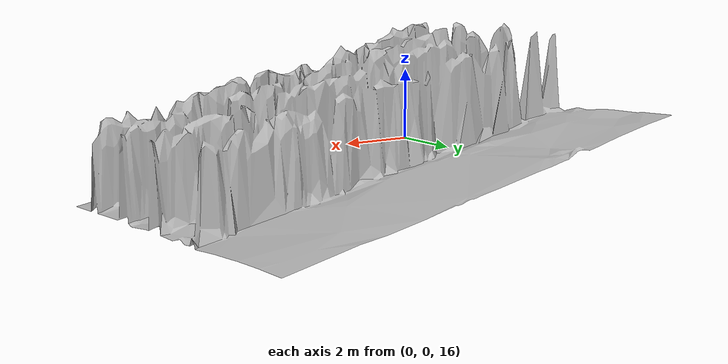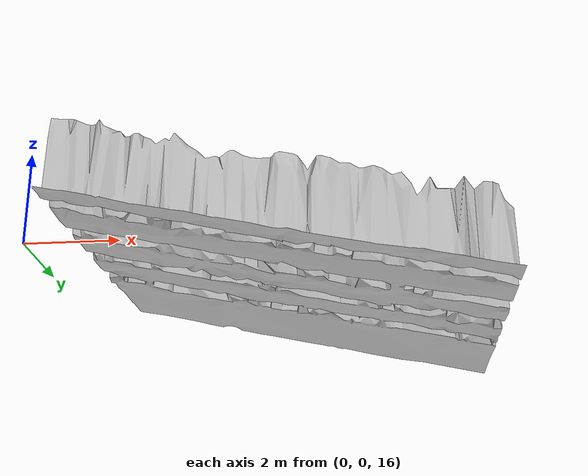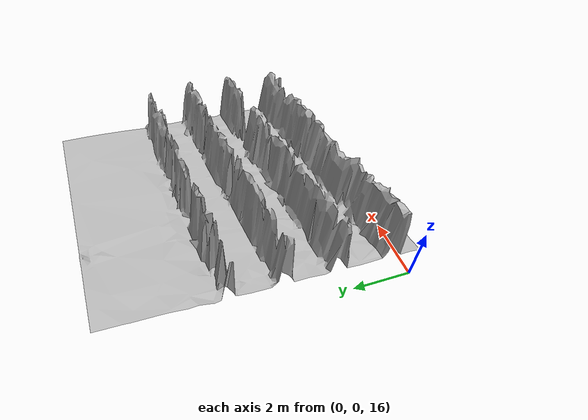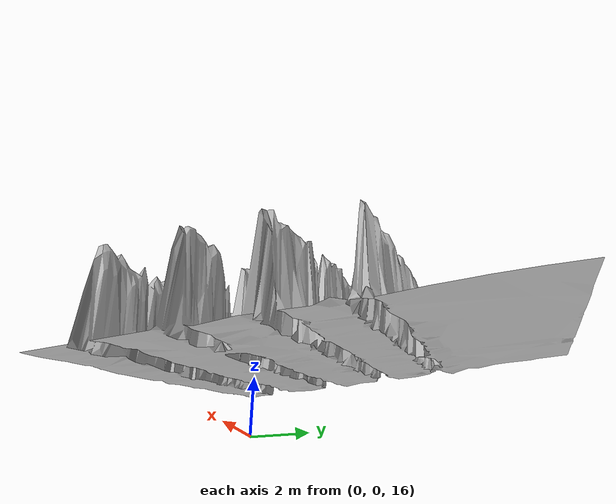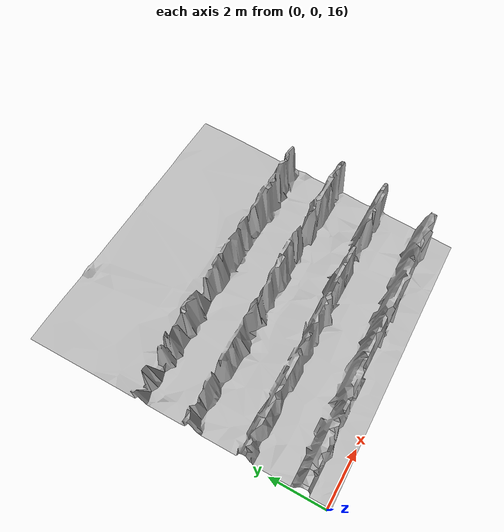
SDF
<?xml version="1.0" ?>
<sdf version="1.10">
    <model name="map_260_30">
        <link name="map_260_30_link">
            <visual name="map_260_30_visual">
                <geometry>
                    <mesh>
                        <uri>meshes/visual/map_260_30.obj</uri>
                    </mesh>
                </geometry>
            </visual>
            <collision name="map_260_30_collision">
                <surface>
                    <friction>
                        <ode>
                            <mu>2.316343837943928</mu>
                            <mu2>2.316343837943928</mu2>
                        </ode>
                        <bullet>
                            <friction>2.316343837943928</friction>
                            <friction2>2.316343837943928</friction2>
                        </bullet>
                    </friction>
                </surface>
                <geometry>
                    <mesh>
                        <uri>meshes/visual/map_260_30.obj</uri>
                    </mesh>
                </geometry>
            </collision>
        </link>
        <static>True</static>
    </model>
</sdf>
